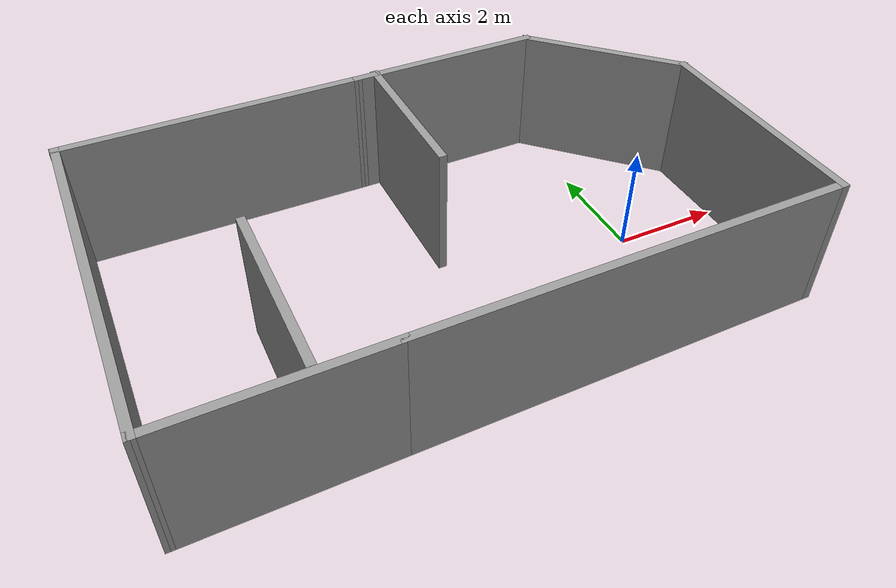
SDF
<?xml version='1.0'?>
<sdf version='1.7'>
  <model name='tasks_map'>
    <pose>-3.53718 0.600711 0 0 -0 0</pose>
    <link name='Wall_11'>
      <collision name='Wall_11_Collision'>
        <geometry>
          <box>
            <size>5.54293 0.15 2.5</size>
          </box>
        </geometry>
        <pose>0 0 1.25 0 -0 0</pose>
      </collision>
      <visual name='Wall_11_Visual'>
        <pose>0 0 1.25 0 -0 0</pose>
        <geometry>
          <box>
            <size>5.54293 0.15 2.5</size>
          </box>
        </geometry>
        <material>
          <script>
            <uri>file://media/materials/scripts/gazebo.material</uri>
            <name>Gazebo/Grey</name>
          </script>
          <ambient>1 1 1 1</ambient>
        </material>
        <meta>
          <layer>0</layer>
        </meta>
      </visual>
      <pose>-2.91118 3.148 0 0 -0 -0.009895</pose>
    </link>
    <link name='Wall_13'>
      <collision name='Wall_13_Collision'>
        <geometry>
          <box>
            <size>3 0.15 2.5</size>
          </box>
        </geometry>
        <pose>0 0 1.25 0 -0 0</pose>
      </collision>
      <visual name='Wall_13_Visual'>
        <pose>0 0 1.25 0 -0 0</pose>
        <geometry>
          <box>
            <size>3 0.15 2.5</size>
          </box>
        </geometry>
        <material>
          <script>
            <uri>file://media/materials/scripts/gazebo.material</uri>
            <name>Gazebo/Grey</name>
          </script>
          <ambient>1 1 1 1</ambient>
        </material>
        <meta>
          <layer>0</layer>
        </meta>
      </visual>
      <pose>0.167914 1.72767 0 0 -0 -1.5708</pose>
    </link>
    <link name='Wall_15'>
      <collision name='Wall_15_Collision'>
        <geometry>
          <box>
            <size>6.5 0.15 2.5</size>
          </box>
        </geometry>
        <pose>0 0 1.25 0 -0 0</pose>
      </collision>
      <visual name='Wall_15_Visual'>
        <pose>0 0 1.25 0 -0 0</pose>
        <geometry>
          <box>
            <size>6.5 0.15 2.5</size>
          </box>
        </geometry>
        <material>
          <script>
            <uri>file://media/materials/scripts/gazebo.material</uri>
            <name>Gazebo/Grey</name>
          </script>
          <ambient>1 1 1 1</ambient>
        </material>
        <meta>
          <layer>0</layer>
        </meta>
      </visual>
      <pose>-5.59595 -0.000321 0 0 -0 -1.5708</pose>
    </link>
    <link name='Wall_18'>
      <collision name='Wall_18_Collision'>
        <geometry>
          <box>
            <size>3.72313 0.15 2.5</size>
          </box>
        </geometry>
        <pose>0 0 1.25 0 -0 0</pose>
      </collision>
      <visual name='Wall_18_Visual'>
        <pose>0 0 1.25 0 -0 0</pose>
        <geometry>
          <box>
            <size>3.72313 0.15 2.5</size>
          </box>
        </geometry>
        <material>
          <script>
            <uri>file://media/materials/scripts/gazebo.material</uri>
            <name>Gazebo/Grey</name>
          </script>
          <ambient>1 1 1 1</ambient>
        </material>
        <meta>
          <layer>0</layer>
        </meta>
      </visual>
      <pose>-3.80938 -3.17302 0 0 -0 -3.1403</pose>
    </link>
    <link name='Wall_21'>
      <collision name='Wall_21_Collision'>
        <geometry>
          <box>
            <size>3.25 0.15 2.5</size>
          </box>
        </geometry>
        <pose>0 0 1.25 0 -0 0</pose>
      </collision>
      <visual name='Wall_21_Visual'>
        <pose>0 0 1.25 0 -0 0</pose>
        <geometry>
          <box>
            <size>3.25 0.15 2.5</size>
          </box>
        </geometry>
        <material>
          <script>
            <uri>file://media/materials/scripts/gazebo.material</uri>
            <name>Gazebo/Grey</name>
          </script>
          <ambient>1 1 1 1</ambient>
        </material>
        <meta>
          <layer>0</layer>
        </meta>
      </visual>
      <pose>-3.28791 -1.46889 0 0 -0 1.5708</pose>
    </link>
    <link name='Wall_5'>
      <collision name='Wall_5_Collision'>
        <geometry>
          <box>
            <size>7.75 0.15 2.5</size>
          </box>
        </geometry>
        <pose>0 0 1.25 0 -0 0</pose>
      </collision>
      <visual name='Wall_5_Visual'>
        <pose>0 0 1.25 0 -0 0</pose>
        <geometry>
          <box>
            <size>7.75 0.15 2.5</size>
          </box>
        </geometry>
        <material>
          <script>
            <uri>file://media/materials/scripts/gazebo.material</uri>
            <name>Gazebo/Grey</name>
          </script>
          <ambient>1 1 1 1</ambient>
        </material>
        <meta>
          <layer>0</layer>
        </meta>
      </visual>
      <pose>1.77718 -3.17071 0 0 -0 0</pose>
    </link>
    <link name='Wall_6'>
      <collision name='Wall_6_Collision'>
        <geometry>
          <box>
            <size>4.25 0.15 2.5</size>
          </box>
        </geometry>
        <pose>0 0 1.25 0 -0 0</pose>
      </collision>
      <visual name='Wall_6_Visual'>
        <pose>0 0 1.25 0 -0 0</pose>
        <geometry>
          <box>
            <size>4.25 0.15 2.5</size>
          </box>
        </geometry>
        <material>
          <script>
            <uri>file://media/materials/scripts/gazebo.material</uri>
            <name>Gazebo/Grey</name>
          </script>
          <ambient>1 1 1 1</ambient>
        </material>
        <meta>
          <layer>0</layer>
        </meta>
      </visual>
      <pose>5.57718 -1.12071 0 0 -0 1.5708</pose>
    </link>
    <link name='Wall_7'>
      <collision name='Wall_7_Collision'>
        <geometry>
          <box>
            <size>3.25 0.15 2.5</size>
          </box>
        </geometry>
        <pose>0 0 1.25 0 -0 0</pose>
      </collision>
      <visual name='Wall_7_Visual'>
        <pose>0 0 1.25 0 -0 0</pose>
        <geometry>
          <box>
            <size>3.25 0.15 2.5</size>
          </box>
        </geometry>
        <material>
          <script>
            <uri>file://media/materials/scripts/gazebo.material</uri>
            <name>Gazebo/Grey</name>
          </script>
          <ambient>1 1 1 1</ambient>
        </material>
        <meta>
          <layer>0</layer>
        </meta>
      </visual>
      <pose>4.48117 2.0253 0 0 -0 2.35619</pose>
    </link>
    <link name='Wall_8'>
      <collision name='Wall_8_Collision'>
        <geometry>
          <box>
            <size>3.75 0.15 2.5</size>
          </box>
        </geometry>
        <pose>0 0 1.25 0 -0 0</pose>
      </collision>
      <visual name='Wall_8_Visual'>
        <pose>0 0 1.25 0 -0 0</pose>
        <geometry>
          <box>
            <size>3.75 0.15 2.5</size>
          </box>
        </geometry>
        <material>
          <script>
            <uri>file://media/materials/scripts/gazebo.material</uri>
            <name>Gazebo/Grey</name>
          </script>
          <ambient>1 1 1 1</ambient>
        </material>
        <meta>
          <layer>0</layer>
        </meta>
      </visual>
      <pose>1.58515 3.12132 0 0 -0 3.14159</pose>
    </link>
    <static>1</static>
  </model>
</sdf>
